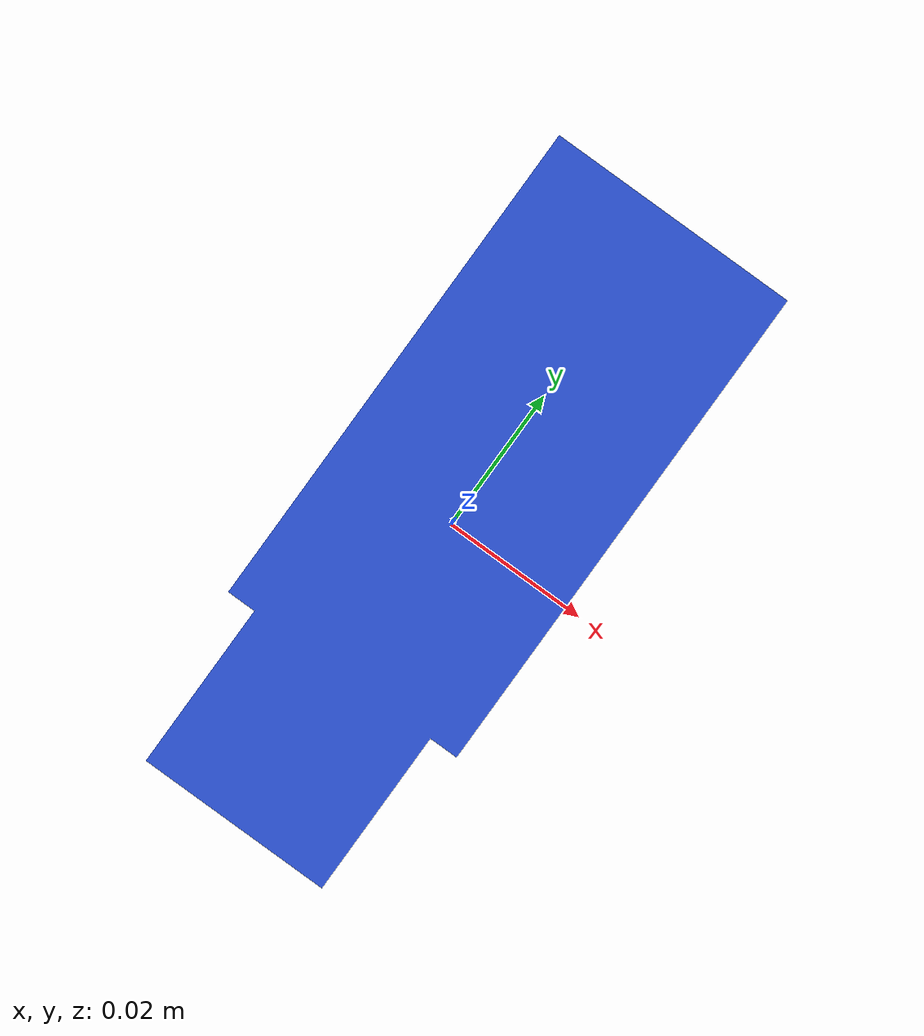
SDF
<?xml version='1.0'?>
<sdf version='1.7'>
  <model name='square_bottle'>

    <plugin name="hydrodynamics" filename="libHydrodynamicsPlugin.so">
      <!-- Wave Model -->
      <wave_model>ocean_waves</wave_model>

      <!-- Hydrodynamics -->
      <damping_on>true</damping_on>
      <viscous_drag_on>true</viscous_drag_on>
      <pressure_drag_on>true</pressure_drag_on>

      <!-- Markers -->
      <markers>
        <update_rate>30</update_rate>
        <water_patch>false</water_patch>
        <waterline>false</waterline>
        <underwater_surface>false</underwater_surface>
      </markers>
    </plugin>

    <link name='link'>
      <inertial>
        <mass>0.05</mass>
        <inertia>
          <ixx>0.166667</ixx>
          <ixy>0</ixy>
          <ixz>0</ixz>
          <iyy>0.166667</iyy>
          <iyz>0</iyz>
          <izz>0.166667</izz>
        </inertia>
      </inertial>
      <pose>0 0 0 0 -0 0</pose>
      <visual name='visual'>
        <pose>0 0 0 0 -0 0</pose>
        <geometry>
          <mesh>
            <uri>model://square_bottle/meshes/square_bottle.obj</uri>
            <scale>1 1 1</scale>
          </mesh>
        </geometry>
        <material>
          <lighting>1</lighting>
          <script>
            <uri>file://media/materials/scripts/gazebo.material</uri>
            <name>Gazebo/Blue</name>
          </script>
          <shader type='pixel'/>
        </material>
        <transparency>0</transparency>
        <cast_shadows>1</cast_shadows>
      </visual>
      <collision name='collision'>
        <laser_retro>0</laser_retro>
        <max_contacts>10</max_contacts>
        <pose>0 0 0 -1.5708 -0 0</pose>
        <geometry>
          <box>
            <size>1 1 1</size>
          </box>
        </geometry>
        <surface>
          <friction>
            <ode>
              <mu>1</mu>
              <mu2>1</mu2>
              <fdir1>0 0 0</fdir1>
              <slip1>0</slip1>
              <slip2>0</slip2>
            </ode>
            <torsional>
              <coefficient>1</coefficient>
              <patch_radius>0</patch_radius>
              <surface_radius>0</surface_radius>
              <use_patch_radius>1</use_patch_radius>
              <ode>
                <slip>0</slip>
              </ode>
            </torsional>
          </friction>
          <bounce>
            <restitution_coefficient>0</restitution_coefficient>
            <threshold>1e+06</threshold>
          </bounce>
          <contact>
            <collide_without_contact>0</collide_without_contact>
            <collide_without_contact_bitmask>1</collide_without_contact_bitmask>
            <collide_bitmask>1</collide_bitmask>
            <ode>
              <soft_cfm>0</soft_cfm>
              <soft_erp>0.2</soft_erp>
              <kp>1e+13</kp>
              <kd>1</kd>
              <max_vel>0.01</max_vel>
              <min_depth>0</min_depth>
            </ode>
            <bullet>
              <split_impulse>1</split_impulse>
              <split_impulse_penetration_threshold>-0.01</split_impulse_penetration_threshold>
              <soft_cfm>0</soft_cfm>
              <soft_erp>0.2</soft_erp>
              <kp>1e+13</kp>
              <kd>1</kd>
            </bullet>
          </contact>
        </surface>
      </collision>
    </link>
    <static>0</static>
    <allow_auto_disable>1</allow_auto_disable>
  </model>
</sdf>
